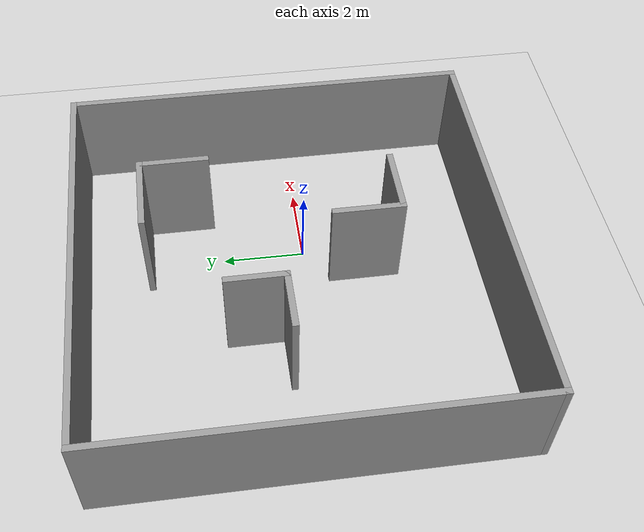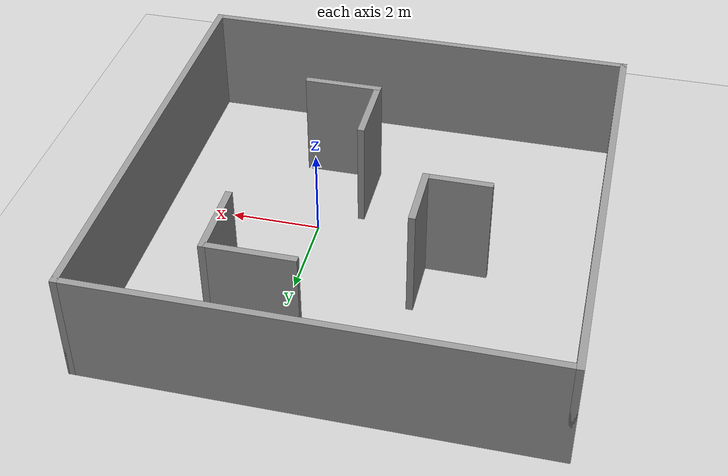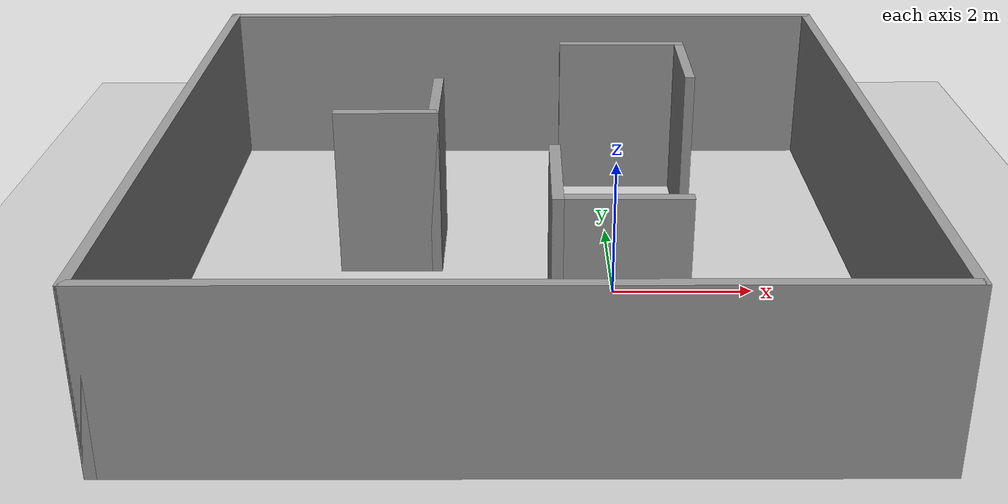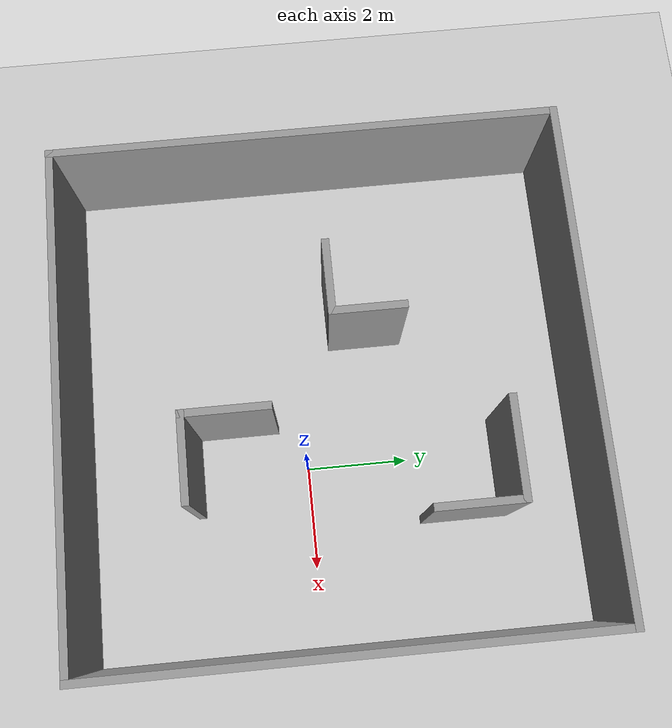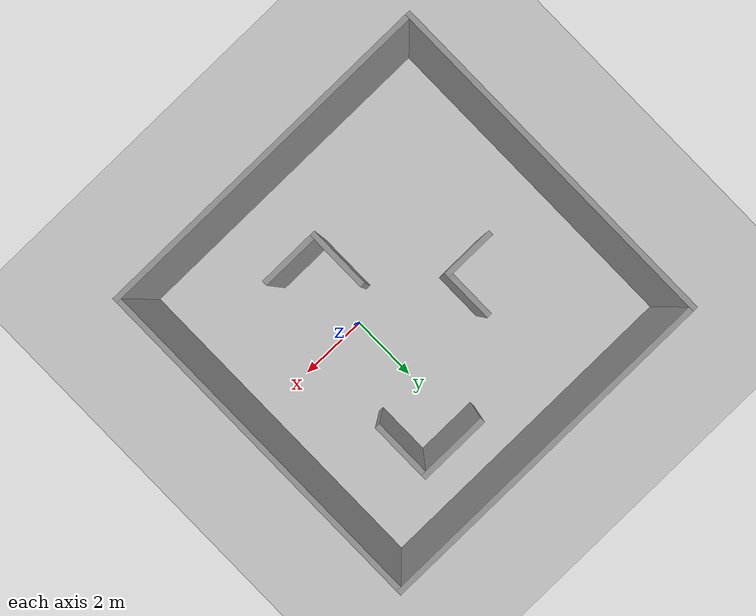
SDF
<sdf version="1.7">
 <world name="default">
  <light name="sun" type="directional">
   <pose>0 0 10 0 -0 0</pose>
   <diffuse>0.8 0.8 0.8 1</diffuse>
   <specular>0.2 0.2 0.2 1</specular>
   <attenuation>
    <range>1000</range>
    <constant>0.9</constant>
    <linear>0.01</linear>
    <quadratic>0.001</quadratic>
   </attenuation>
   <direction>-0.5 0.1 -0.9</direction>
   <spot><inner_angle>0</inner_angle><outer_angle>0</outer_angle><falloff>0</falloff></spot>
  </light>
  <model name="ground_plane">
   <static>1</static>
   <link name="link">
    <collision name="collision">
     <geometry><plane><normal>0 0 1</normal><size>100 100</size></plane></geometry>
     <surface>
      <contact><collide_bitmask>65535</collide_bitmask></contact>
      <friction><ode><mu>100</mu><mu2>50</mu2></ode></friction>
     </surface>
    </collision>
    <visual name="visual">
     <cast_shadows>0</cast_shadows>
     <geometry><plane><normal>0 0 1</normal><size>100 100</size></plane></geometry>
     <material>
      <script><uri>file://media/materials/scripts/gazebo.material</uri><name>Gazebo/Grey</name></script>
     </material>
    </visual>
   </link>
  </model>
  <gravity>0 0 -9.8</gravity>
  <magnetic_field>6e-06 2.3e-05 -4.2e-05</magnetic_field>
  <atmosphere type="adiabatic"/>
  <physics type="ode">
   <max_step_size>0.001</max_step_size>
   <real_time_factor>1</real_time_factor>
   <real_time_update_rate>1000</real_time_update_rate>
  </physics>
  <scene><ambient>0.4 0.4 0.4 1</ambient><background>0.7 0.7 0.7 1</background><shadows>1</shadows></scene>
  <spherical_coordinates>
   <surface_model>EARTH_WGS84</surface_model>
   <latitude_deg>0</latitude_deg>
   <longitude_deg>0</longitude_deg>
   <elevation>0</elevation>
   <heading_deg>0</heading_deg>
  </spherical_coordinates>
  <model name="Untitled">
   <pose>-1.31035 0.499367 0 0 -0 0</pose>
   <link name="Wall_1">
    <collision name="Wall_1_Collision">
     <geometry><box><size>10 0.15 2.5</size></box></geometry>
     <pose>0 0 1.25 0 -0 0</pose>
    </collision>
    <visual name="Wall_1_Visual">
     <pose>0 0 1.25 0 -0 0</pose>
     <geometry><box><size>10 0.15 2.5</size></box></geometry>
     <material>
      <script><uri>file://media/materials/scripts/gazebo.material</uri><name>Gazebo/Grey</name></script>
      <ambient>1 1 1 1</ambient>
     </material>
     <meta><layer>0</layer></meta>
    </visual>
    <pose>-4.925 0 0 0 -0 1.5708</pose>
   </link>
   <link name="Wall_10">
    <collision name="Wall_10_Collision">
     <geometry><box><size>2 0.15 2.5</size></box></geometry>
     <pose>0 0 1.25 0 -0 0</pose>
    </collision>
    <visual name="Wall_10_Visual">
     <pose>0 0 1.25 0 -0 0</pose>
     <geometry><box><size>2 0.15 2.5</size></box></geometry>
     <material>
      <script><uri>file://media/materials/scripts/gazebo.material</uri><name>Gazebo/Grey</name></script>
      <ambient>1 1 1 1</ambient>
     </material>
     <meta><layer>0</layer></meta>
    </visual>
    <pose>1.62571 3.33577 0 0 -0 0</pose>
   </link>
   <link name="Wall_11">
    <collision name="Wall_11_Collision">
     <geometry><box><size>1.75 0.15 2.5</size></box></geometry>
     <pose>0 0 1.25 0 -0 0</pose>
    </collision>
    <visual name="Wall_11_Visual">
     <pose>0 0 1.25 0 -0 0</pose>
     <geometry><box><size>1.75 0.15 2.5</size></box></geometry>
     <material>
      <script><uri>file://media/materials/scripts/gazebo.material</uri><name>Gazebo/Grey</name></script>
      <ambient>1 1 1 1</ambient>
     </material>
     <meta><layer>0</layer></meta>
    </visual>
    <pose>2.55071 2.53577 0 0 -0 -1.5708</pose>
   </link>
   <link name="Wall_13">
    <collision name="Wall_13_Collision">
     <geometry><box><size>1.75 0.15 2.5</size></box></geometry>
     <pose>0 0 1.25 0 -0 0</pose>
    </collision>
    <visual name="Wall_13_Visual">
     <pose>0 0 1.25 0 -0 0</pose>
     <geometry><box><size>1.75 0.15 2.5</size></box></geometry>
     <material>
      <script><uri>file://media/materials/scripts/gazebo.material</uri><name>Gazebo/Grey</name></script>
      <ambient>1 1 1 1</ambient>
     </material>
     <meta><layer>0</layer></meta>
    </visual>
    <pose>0.434712 -1.90646 0 0 -0 -1.5708</pose>
   </link>
   <link name="Wall_14">
    <collision name="Wall_14_Collision">
     <geometry><box><size>1.75 0.15 2.5</size></box></geometry>
     <pose>0 0 1.25 0 -0 0</pose>
    </collision>
    <visual name="Wall_14_Visual">
     <pose>0 0 1.25 0 -0 0</pose>
     <geometry><box><size>1.75 0.15 2.5</size></box></geometry>
     <material>
      <script><uri>file://media/materials/scripts/gazebo.material</uri><name>Gazebo/Grey</name></script>
      <ambient>1 1 1 1</ambient>
     </material>
     <meta><layer>0</layer></meta>
    </visual>
    <pose>1.23471 -2.70646 0 0 -0 0</pose>
   </link>
   <link name="Wall_2">
    <collision name="Wall_2_Collision">
     <geometry><box><size>10 0.15 2.5</size></box></geometry>
     <pose>0 0 1.25 0 -0 0</pose>
    </collision>
    <visual name="Wall_2_Visual">
     <pose>0 0 1.25 0 -0 0</pose>
     <geometry><box><size>10 0.15 2.5</size></box></geometry>
     <material>
      <script><uri>file://media/materials/scripts/gazebo.material</uri><name>Gazebo/Grey</name></script>
      <ambient>1 1 1 1</ambient>
     </material>
     <meta><layer>0</layer></meta>
    </visual>
    <pose>0 4.925 0 0 -0 0</pose>
   </link>
   <link name="Wall_4">
    <collision name="Wall_4_Collision">
     <geometry><box><size>10 0.15 2.5</size></box></geometry>
     <pose>0 0 1.25 0 -0 0</pose>
    </collision>
    <visual name="Wall_4_Visual">
     <pose>0 0 1.25 0 -0 0</pose>
     <geometry><box><size>10 0.15 2.5</size></box></geometry>
     <material>
      <script><uri>file://media/materials/scripts/gazebo.material</uri><name>Gazebo/Grey</name></script>
      <ambient>1 1 1 1</ambient>
     </material>
     <meta><layer>0</layer></meta>
    </visual>
    <pose>0 -4.925 0 0 -0 0</pose>
   </link>
   <link name="Wall_5">
    <collision name="Wall_5_Collision">
     <geometry><box><size>10 0.15 2.5</size></box></geometry>
     <pose>0 0 1.25 0 -0 0</pose>
    </collision>
    <visual name="Wall_5_Visual">
     <pose>0 0 1.25 0 -0 0</pose>
     <geometry><box><size>10 0.15 2.5</size></box></geometry>
     <material>
      <script><uri>file://media/materials/scripts/gazebo.material</uri><name>Gazebo/Grey</name></script>
      <ambient>1 1 1 1</ambient>
     </material>
     <meta><layer>0</layer></meta>
    </visual>
    <pose>4.925 0 0 0 -0 1.5708</pose>
   </link>
   <link name="Wall_7">
    <collision name="Wall_7_Collision">
     <geometry><box><size>1.5 0.15 2.5</size></box></geometry>
     <pose>0 0 1.25 0 -0 0</pose>
    </collision>
    <visual name="Wall_7_Visual">
     <pose>0 0 1.25 0 -0 0</pose>
     <geometry><box><size>1.5 0.15 2.5</size></box></geometry>
     <material>
      <script><uri>file://media/materials/scripts/gazebo.material</uri><name>Gazebo/Grey</name></script>
      <ambient>1 1 1 1</ambient>
     </material>
     <meta><layer>0</layer></meta>
    </visual>
    <pose>-1.92271 0.22355 0 0 -0 0</pose>
   </link>
   <link name="Wall_8">
    <collision name="Wall_8_Collision">
     <geometry><box><size>1.5 0.15 2.5</size></box></geometry>
     <pose>0 0 1.25 0 -0 0</pose>
    </collision>
    <visual name="Wall_8_Visual">
     <pose>0 0 1.25 0 -0 0</pose>
     <geometry><box><size>1.5 0.15 2.5</size></box></geometry>
     <material>
      <script><uri>file://media/materials/scripts/gazebo.material</uri><name>Gazebo/Grey</name></script>
      <ambient>1 1 1 1</ambient>
     </material>
     <meta><layer>0</layer></meta>
    </visual>
    <pose>-1.24771 0.89855 0 0 -0 1.5708</pose>
   </link>
   <static>1</static>
  </model>
 </world>
</sdf>
